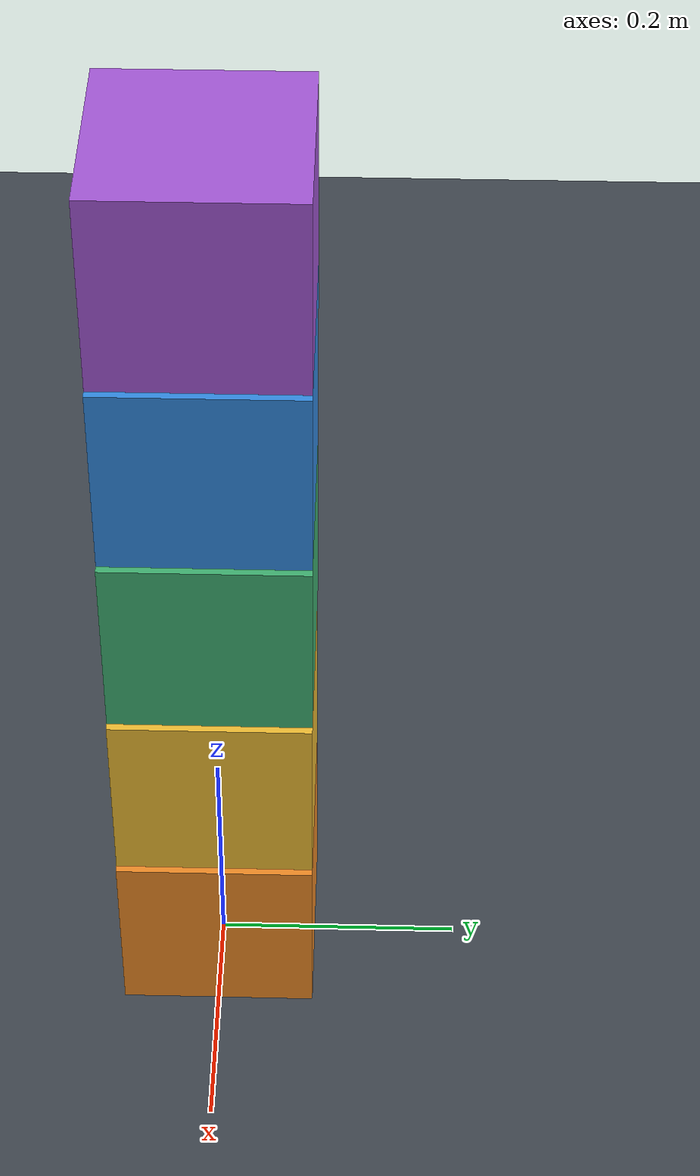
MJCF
<mujoco model="five_block_topple">
  <compiler angle="radian"/>
  <option timestep="0.002" gravity="0 0 -9.81" integrator="implicitfast" solver="Newton" iterations="80" cone="elliptic"/>
  <statistic center="0 0 0.35" extent="1.4"/>

  <visual>
    <headlight ambient="0.35 0.35 0.35" diffuse="0.7 0.7 0.7" specular="0.2 0.2 0.2"/>
  </visual>

  <worldbody>
    <light name="overhead" pos="0 -1 3" dir="0 0 -1"/>
    <camera name="overview" pos="1.8 -2.7 1.6" xyaxes="0.832 0.555 0 -0.235 0.352 0.906"/>
    <geom name="floor" type="plane" pos="0 0 0" size="3 3 0.1" friction="0.65 0.005 0.0001" solref="0.01 1" rgba="0.25 0.28 0.31 1"/>

    <!-- The rail constrains the pusher to horizontal motion at bottom-block height. -->
    <body name="pusher" pos="-0.65 0 0.08">
      <joint name="pusher_slide" type="slide" axis="1 0 0" limited="true" range="0 1.05" damping="0.05"/>
      <geom name="pusher_geom" type="sphere" size="0.065" mass="4" friction="0.4 0.005 0.0001" solref="0.01 1" rgba="0.85 0.15 0.15 1"/>
    </body>

    <!-- Small offsets leave the tower stable but favor a clear topple after the push. -->
    <body name="block1" pos="0 0 0.08">
      <freejoint name="block1_free"/>
      <geom name="block1_geom" type="box" size="0.08 0.08 0.08" mass="0.55" friction="0.65 0.005 0.0001" solref="0.01 1" solimp="0.95 0.99 0.001" rgba="0.95 0.55 0.15 1"/>
    </body>
    <body name="block2" pos="-0.006 0 0.24">
      <freejoint name="block2_free"/>
      <geom name="block2_geom" type="box" size="0.08 0.08 0.08" mass="0.55" friction="0.65 0.005 0.0001" solref="0.01 1" solimp="0.95 0.99 0.001" rgba="0.95 0.75 0.2 1"/>
    </body>
    <body name="block3" pos="-0.012 0 0.40">
      <freejoint name="block3_free"/>
      <geom name="block3_geom" type="box" size="0.08 0.08 0.08" mass="0.55" friction="0.65 0.005 0.0001" solref="0.01 1" solimp="0.95 0.99 0.001" rgba="0.25 0.7 0.45 1"/>
    </body>
    <body name="block4" pos="-0.018 0 0.56">
      <freejoint name="block4_free"/>
      <geom name="block4_geom" type="box" size="0.08 0.08 0.08" mass="0.55" friction="0.65 0.005 0.0001" solref="0.01 1" solimp="0.95 0.99 0.001" rgba="0.2 0.55 0.9 1"/>
    </body>
    <body name="block5" pos="-0.024 0 0.72">
      <freejoint name="block5_free"/>
      <geom name="block5_geom" type="box" size="0.08 0.08 0.08" mass="0.55" friction="0.65 0.005 0.0001" solref="0.01 1" solimp="0.95 0.99 0.001" rgba="0.65 0.35 0.85 1"/>
    </body>
  </worldbody>

  <keyframe>
    <!-- Only the pusher starts moving; contact occurs after approximately 0.32 seconds. -->
    <key name="start" qvel="1.6 0 0 0 0 0 0  0 0 0 0 0 0  0 0 0 0 0 0  0 0 0 0 0 0  0 0 0 0 0 0"/>
  </keyframe>
</mujoco>
